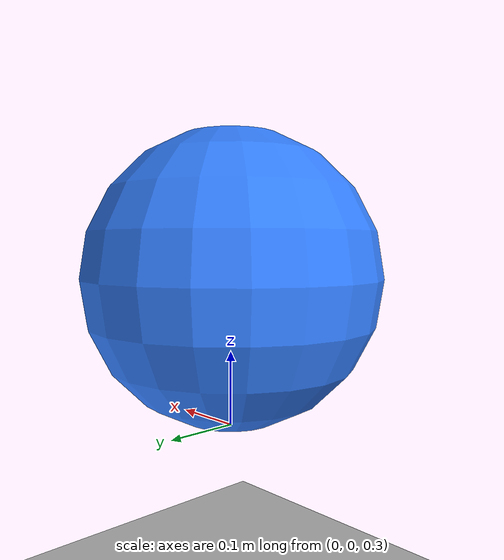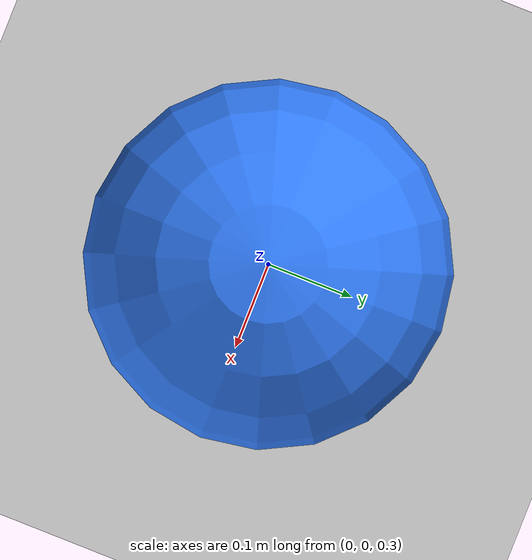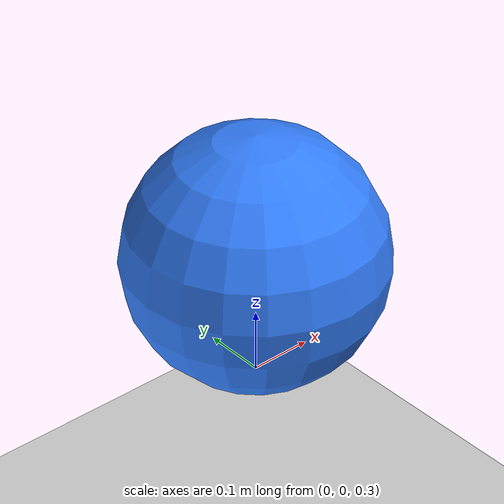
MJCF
<mujoco model="sphere_robot">
    <compiler angle="radian" />
    <default>
        <geom friction="0.5 0.1 0.1" rgba="0.1 0.8 0.1 1" />
    </default>
    <option gravity="0 0 -9.81" />

    <worldbody>
        <!-- Ground Plane -->
        <geom type="plane" size="5 5 0.1" rgba="0.8 0.8 0.8 1" />

        <!-- Sphere Robot -->
        <body name="robot" pos="0 0 0.5">
            <joint name="free_joint" type="free" />
            <geom name="sphere" type="sphere" size="0.2" rgba="0.2 0.5 1 1" />
        </body>
    </worldbody>

    <actuator>
        <!-- Actuators to move the sphere -->
        <general name="x_force" joint="free_joint" ctrllimited="true" ctrlrange="-10 10" gainprm="1 1 1" gear="1 0 0 0 0 0" />
        <general name="y_force" joint="free_joint" ctrllimited="true" ctrlrange="-10 10" gainprm="1 1 1" gear="0 1 0 0 0 0" />
        <general name="z_force" joint="free_joint" ctrllimited="true" ctrlrange="-10 10" gainprm="1 1 1" gear="0 0 1 0 0 0" />
        <general name="x_torque" joint="free_joint" ctrllimited="true" ctrlrange="-10 10" gainprm="1 1 1" gear="0 0 0 1 0 0" />
        <general name="y_torque" joint="free_joint" ctrllimited="true" ctrlrange="-10 10" gainprm="1 1 1" gear="0 0 0 0 1 0" />
        <general name="z_torque" joint="free_joint" ctrllimited="true" ctrlrange="-10 10" gainprm="1 1 1" gear="0 0 0 0 0 1" />
    </actuator>
</mujoco>
